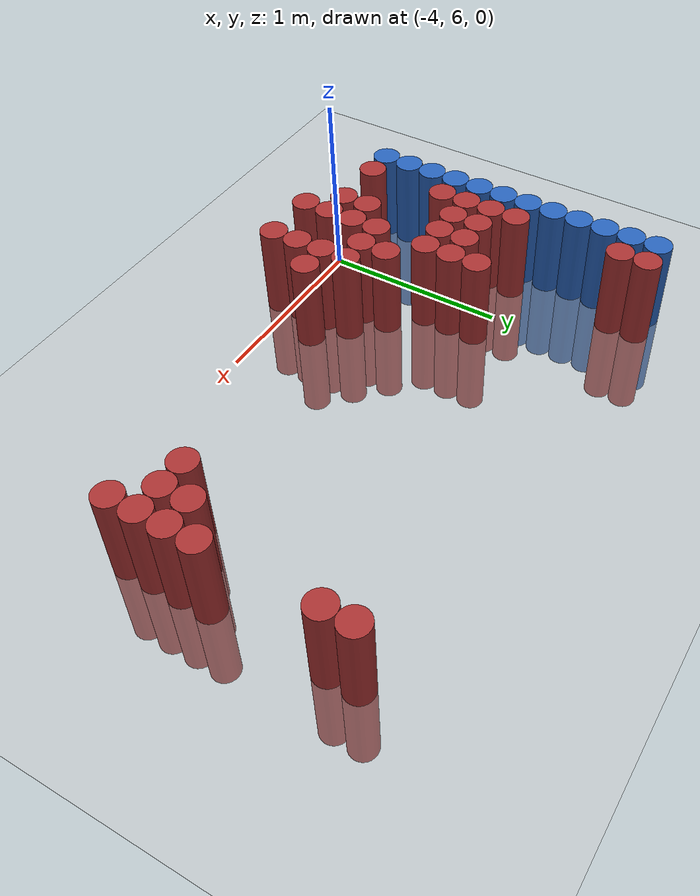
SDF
<sdf version="1.6">
 <world name="default">
  <model name="ground_plane">
   <static>1</static>
   <link name="link">
    <collision name="collision">
     <geometry><plane><normal>0 0 1</normal><size>100 100</size></plane></geometry>
     <surface><friction><ode><mu>100</mu><mu2>50</mu2></ode></friction></surface>
    </collision>
    <visual name="visual">
     <cast_shadows>0</cast_shadows>
     <geometry><plane><normal>0 0 1</normal><size>100 100</size></plane></geometry>
     <material>
      <script><uri>file://media/materials/scripts/gazebo.material</uri><name>Gazebo/Grey</name></script>
     </material>
    </visual>
   </link>
  </model>
  <model name="unit_cylinder_102">
   <static>1</static>
   <pose>-4.425000 6.075000 0.000000 0.000000 0.000000 0.000000</pose>
   <link name="link">
    <inertial>
     <mass>1</mass>
     <inertia><ixx>0.145833</ixx><ixy>0</ixy><ixz>0</ixz><iyy>0.145833</iyy><iyz>0</iyz><izz>0.125</izz></inertia>
    </inertial>
    <collision name="collision">
     <geometry><cylinder><radius>0.075000</radius><length>1</length></cylinder></geometry>
    </collision>
    <visual name="visual">
     <geometry><cylinder><radius>0.075000</radius><length>1</length></cylinder></geometry>
     <material>
      <ambient>0.152000 0.379000 0.720000 1</ambient>
      <diffuse>0.152000 0.379000 0.720000 1</diffuse>
     </material>
     <material>
      <script><name>Gazebo/Grey</name><uri>file://media/materials/scripts/gazebo.material</uri></script>
     </material>
    </visual>
   </link>
  </model>
  <model name="unit_cylinder_103">
   <static>1</static>
   <pose>-4.425000 6.225000 0.000000 0.000000 0.000000 0.000000</pose>
   <link name="link">
    <inertial>
     <mass>1</mass>
     <inertia><ixx>0.145833</ixx><ixy>0</ixy><ixz>0</ixz><iyy>0.145833</iyy><iyz>0</iyz><izz>0.125</izz></inertia>
    </inertial>
    <collision name="collision">
     <geometry><cylinder><radius>0.075000</radius><length>1</length></cylinder></geometry>
    </collision>
    <visual name="visual">
     <geometry><cylinder><radius>0.075000</radius><length>1</length></cylinder></geometry>
     <material>
      <ambient>0.152000 0.379000 0.720000 1</ambient>
      <diffuse>0.152000 0.379000 0.720000 1</diffuse>
     </material>
     <material>
      <script><name>Gazebo/Grey</name><uri>file://media/materials/scripts/gazebo.material</uri></script>
     </material>
    </visual>
   </link>
  </model>
  <model name="unit_cylinder_104">
   <static>1</static>
   <pose>-4.425000 6.375000 0.000000 0.000000 0.000000 0.000000</pose>
   <link name="link">
    <inertial>
     <mass>1</mass>
     <inertia><ixx>0.145833</ixx><ixy>0</ixy><ixz>0</ixz><iyy>0.145833</iyy><iyz>0</iyz><izz>0.125</izz></inertia>
    </inertial>
    <collision name="collision">
     <geometry><cylinder><radius>0.075000</radius><length>1</length></cylinder></geometry>
    </collision>
    <visual name="visual">
     <geometry><cylinder><radius>0.075000</radius><length>1</length></cylinder></geometry>
     <material>
      <ambient>0.152000 0.379000 0.720000 1</ambient>
      <diffuse>0.152000 0.379000 0.720000 1</diffuse>
     </material>
     <material>
      <script><name>Gazebo/Grey</name><uri>file://media/materials/scripts/gazebo.material</uri></script>
     </material>
    </visual>
   </link>
  </model>
  <model name="unit_cylinder_105">
   <static>1</static>
   <pose>-4.425000 6.525000 0.000000 0.000000 0.000000 0.000000</pose>
   <link name="link">
    <inertial>
     <mass>1</mass>
     <inertia><ixx>0.145833</ixx><ixy>0</ixy><ixz>0</ixz><iyy>0.145833</iyy><iyz>0</iyz><izz>0.125</izz></inertia>
    </inertial>
    <collision name="collision">
     <geometry><cylinder><radius>0.075000</radius><length>1</length></cylinder></geometry>
    </collision>
    <visual name="visual">
     <geometry><cylinder><radius>0.075000</radius><length>1</length></cylinder></geometry>
     <material>
      <ambient>0.152000 0.379000 0.720000 1</ambient>
      <diffuse>0.152000 0.379000 0.720000 1</diffuse>
     </material>
     <material>
      <script><name>Gazebo/Grey</name><uri>file://media/materials/scripts/gazebo.material</uri></script>
     </material>
    </visual>
   </link>
  </model>
  <model name="unit_cylinder_106">
   <static>1</static>
   <pose>-4.425000 6.675000 0.000000 0.000000 0.000000 0.000000</pose>
   <link name="link">
    <inertial>
     <mass>1</mass>
     <inertia><ixx>0.145833</ixx><ixy>0</ixy><ixz>0</ixz><iyy>0.145833</iyy><iyz>0</iyz><izz>0.125</izz></inertia>
    </inertial>
    <collision name="collision">
     <geometry><cylinder><radius>0.075000</radius><length>1</length></cylinder></geometry>
    </collision>
    <visual name="visual">
     <geometry><cylinder><radius>0.075000</radius><length>1</length></cylinder></geometry>
     <material>
      <ambient>0.152000 0.379000 0.720000 1</ambient>
      <diffuse>0.152000 0.379000 0.720000 1</diffuse>
     </material>
     <material>
      <script><name>Gazebo/Grey</name><uri>file://media/materials/scripts/gazebo.material</uri></script>
     </material>
    </visual>
   </link>
  </model>
  <model name="unit_cylinder_107">
   <static>1</static>
   <pose>-4.425000 6.825000 0.000000 0.000000 0.000000 0.000000</pose>
   <link name="link">
    <inertial>
     <mass>1</mass>
     <inertia><ixx>0.145833</ixx><ixy>0</ixy><ixz>0</ixz><iyy>0.145833</iyy><iyz>0</iyz><izz>0.125</izz></inertia>
    </inertial>
    <collision name="collision">
     <geometry><cylinder><radius>0.075000</radius><length>1</length></cylinder></geometry>
    </collision>
    <visual name="visual">
     <geometry><cylinder><radius>0.075000</radius><length>1</length></cylinder></geometry>
     <material>
      <ambient>0.152000 0.379000 0.720000 1</ambient>
      <diffuse>0.152000 0.379000 0.720000 1</diffuse>
     </material>
     <material>
      <script><name>Gazebo/Grey</name><uri>file://media/materials/scripts/gazebo.material</uri></script>
     </material>
    </visual>
   </link>
  </model>
  <model name="unit_cylinder_108">
   <static>1</static>
   <pose>-4.425000 6.975000 0.000000 0.000000 0.000000 0.000000</pose>
   <link name="link">
    <inertial>
     <mass>1</mass>
     <inertia><ixx>0.145833</ixx><ixy>0</ixy><ixz>0</ixz><iyy>0.145833</iyy><iyz>0</iyz><izz>0.125</izz></inertia>
    </inertial>
    <collision name="collision">
     <geometry><cylinder><radius>0.075000</radius><length>1</length></cylinder></geometry>
    </collision>
    <visual name="visual">
     <geometry><cylinder><radius>0.075000</radius><length>1</length></cylinder></geometry>
     <material>
      <ambient>0.152000 0.379000 0.720000 1</ambient>
      <diffuse>0.152000 0.379000 0.720000 1</diffuse>
     </material>
     <material>
      <script><name>Gazebo/Grey</name><uri>file://media/materials/scripts/gazebo.material</uri></script>
     </material>
    </visual>
   </link>
  </model>
  <model name="unit_cylinder_109">
   <static>1</static>
   <pose>-4.425000 7.125000 0.000000 0.000000 0.000000 0.000000</pose>
   <link name="link">
    <inertial>
     <mass>1</mass>
     <inertia><ixx>0.145833</ixx><ixy>0</ixy><ixz>0</ixz><iyy>0.145833</iyy><iyz>0</iyz><izz>0.125</izz></inertia>
    </inertial>
    <collision name="collision">
     <geometry><cylinder><radius>0.075000</radius><length>1</length></cylinder></geometry>
    </collision>
    <visual name="visual">
     <geometry><cylinder><radius>0.075000</radius><length>1</length></cylinder></geometry>
     <material>
      <ambient>0.152000 0.379000 0.720000 1</ambient>
      <diffuse>0.152000 0.379000 0.720000 1</diffuse>
     </material>
     <material>
      <script><name>Gazebo/Grey</name><uri>file://media/materials/scripts/gazebo.material</uri></script>
     </material>
    </visual>
   </link>
  </model>
  <model name="unit_cylinder_110">
   <static>1</static>
   <pose>-4.425000 7.275000 0.000000 0.000000 0.000000 0.000000</pose>
   <link name="link">
    <inertial>
     <mass>1</mass>
     <inertia><ixx>0.145833</ixx><ixy>0</ixy><ixz>0</ixz><iyy>0.145833</iyy><iyz>0</iyz><izz>0.125</izz></inertia>
    </inertial>
    <collision name="collision">
     <geometry><cylinder><radius>0.075000</radius><length>1</length></cylinder></geometry>
    </collision>
    <visual name="visual">
     <geometry><cylinder><radius>0.075000</radius><length>1</length></cylinder></geometry>
     <material>
      <ambient>0.152000 0.379000 0.720000 1</ambient>
      <diffuse>0.152000 0.379000 0.720000 1</diffuse>
     </material>
     <material>
      <script><name>Gazebo/Grey</name><uri>file://media/materials/scripts/gazebo.material</uri></script>
     </material>
    </visual>
   </link>
  </model>
  <model name="unit_cylinder_111">
   <static>1</static>
   <pose>-4.425000 7.425000 0.000000 0.000000 0.000000 0.000000</pose>
   <link name="link">
    <inertial>
     <mass>1</mass>
     <inertia><ixx>0.145833</ixx><ixy>0</ixy><ixz>0</ixz><iyy>0.145833</iyy><iyz>0</iyz><izz>0.125</izz></inertia>
    </inertial>
    <collision name="collision">
     <geometry><cylinder><radius>0.075000</radius><length>1</length></cylinder></geometry>
    </collision>
    <visual name="visual">
     <geometry><cylinder><radius>0.075000</radius><length>1</length></cylinder></geometry>
     <material>
      <ambient>0.152000 0.379000 0.720000 1</ambient>
      <diffuse>0.152000 0.379000 0.720000 1</diffuse>
     </material>
     <material>
      <script><name>Gazebo/Grey</name><uri>file://media/materials/scripts/gazebo.material</uri></script>
     </material>
    </visual>
   </link>
  </model>
  <model name="unit_cylinder_112">
   <static>1</static>
   <pose>-4.425000 7.575000 0.000000 0.000000 0.000000 0.000000</pose>
   <link name="link">
    <inertial>
     <mass>1</mass>
     <inertia><ixx>0.145833</ixx><ixy>0</ixy><ixz>0</ixz><iyy>0.145833</iyy><iyz>0</iyz><izz>0.125</izz></inertia>
    </inertial>
    <collision name="collision">
     <geometry><cylinder><radius>0.075000</radius><length>1</length></cylinder></geometry>
    </collision>
    <visual name="visual">
     <geometry><cylinder><radius>0.075000</radius><length>1</length></cylinder></geometry>
     <material>
      <ambient>0.152000 0.379000 0.720000 1</ambient>
      <diffuse>0.152000 0.379000 0.720000 1</diffuse>
     </material>
     <material>
      <script><name>Gazebo/Grey</name><uri>file://media/materials/scripts/gazebo.material</uri></script>
     </material>
    </visual>
   </link>
  </model>
  <model name="unit_cylinder_113">
   <static>1</static>
   <pose>-4.425000 7.725000 0.000000 0.000000 0.000000 0.000000</pose>
   <link name="link">
    <inertial>
     <mass>1</mass>
     <inertia><ixx>0.145833</ixx><ixy>0</ixy><ixz>0</ixz><iyy>0.145833</iyy><iyz>0</iyz><izz>0.125</izz></inertia>
    </inertial>
    <collision name="collision">
     <geometry><cylinder><radius>0.075000</radius><length>1</length></cylinder></geometry>
    </collision>
    <visual name="visual">
     <geometry><cylinder><radius>0.075000</radius><length>1</length></cylinder></geometry>
     <material>
      <ambient>0.152000 0.379000 0.720000 1</ambient>
      <diffuse>0.152000 0.379000 0.720000 1</diffuse>
     </material>
     <material>
      <script><name>Gazebo/Grey</name><uri>file://media/materials/scripts/gazebo.material</uri></script>
     </material>
    </visual>
   </link>
  </model>
  <model name="unit_cylinder_128">
   <static>1</static>
   <pose>-4.275000 6.075000 0.000000 0.000000 0.000000 0.000000</pose>
   <link name="link">
    <inertial>
     <mass>1</mass>
     <inertia><ixx>0.145833</ixx><ixy>0</ixy><ixz>0</ixz><iyy>0.145833</iyy><iyz>0</iyz><izz>0.125</izz></inertia>
    </inertial>
    <collision name="collision">
     <geometry><cylinder><radius>0.075000</radius><length>1</length></cylinder></geometry>
    </collision>
    <visual name="visual">
     <geometry><cylinder><radius>0.075000</radius><length>1</length></cylinder></geometry>
     <material>
      <ambient>0.648000 0.192000 0.192000 1</ambient>
      <diffuse>0.648000 0.192000 0.192000 1</diffuse>
     </material>
     <material>
      <script><name>Gazebo/Grey</name><uri>file://media/materials/scripts/gazebo.material</uri></script>
     </material>
    </visual>
   </link>
  </model>
  <model name="unit_cylinder_129">
   <static>1</static>
   <pose>-4.275000 6.525000 0.000000 0.000000 0.000000 0.000000</pose>
   <link name="link">
    <inertial>
     <mass>1</mass>
     <inertia><ixx>0.145833</ixx><ixy>0</ixy><ixz>0</ixz><iyy>0.145833</iyy><iyz>0</iyz><izz>0.125</izz></inertia>
    </inertial>
    <collision name="collision">
     <geometry><cylinder><radius>0.075000</radius><length>1</length></cylinder></geometry>
    </collision>
    <visual name="visual">
     <geometry><cylinder><radius>0.075000</radius><length>1</length></cylinder></geometry>
     <material>
      <ambient>0.648000 0.192000 0.192000 1</ambient>
      <diffuse>0.648000 0.192000 0.192000 1</diffuse>
     </material>
     <material>
      <script><name>Gazebo/Grey</name><uri>file://media/materials/scripts/gazebo.material</uri></script>
     </material>
    </visual>
   </link>
  </model>
  <model name="unit_cylinder_130">
   <static>1</static>
   <pose>-4.275000 6.675000 0.000000 0.000000 0.000000 0.000000</pose>
   <link name="link">
    <inertial>
     <mass>1</mass>
     <inertia><ixx>0.145833</ixx><ixy>0</ixy><ixz>0</ixz><iyy>0.145833</iyy><iyz>0</iyz><izz>0.125</izz></inertia>
    </inertial>
    <collision name="collision">
     <geometry><cylinder><radius>0.075000</radius><length>1</length></cylinder></geometry>
    </collision>
    <visual name="visual">
     <geometry><cylinder><radius>0.075000</radius><length>1</length></cylinder></geometry>
     <material>
      <ambient>0.648000 0.192000 0.192000 1</ambient>
      <diffuse>0.648000 0.192000 0.192000 1</diffuse>
     </material>
     <material>
      <script><name>Gazebo/Grey</name><uri>file://media/materials/scripts/gazebo.material</uri></script>
     </material>
    </visual>
   </link>
  </model>
  <model name="unit_cylinder_131">
   <static>1</static>
   <pose>-4.275000 6.825000 0.000000 0.000000 0.000000 0.000000</pose>
   <link name="link">
    <inertial>
     <mass>1</mass>
     <inertia><ixx>0.145833</ixx><ixy>0</ixy><ixz>0</ixz><iyy>0.145833</iyy><iyz>0</iyz><izz>0.125</izz></inertia>
    </inertial>
    <collision name="collision">
     <geometry><cylinder><radius>0.075000</radius><length>1</length></cylinder></geometry>
    </collision>
    <visual name="visual">
     <geometry><cylinder><radius>0.075000</radius><length>1</length></cylinder></geometry>
     <material>
      <ambient>0.648000 0.192000 0.192000 1</ambient>
      <diffuse>0.648000 0.192000 0.192000 1</diffuse>
     </material>
     <material>
      <script><name>Gazebo/Grey</name><uri>file://media/materials/scripts/gazebo.material</uri></script>
     </material>
    </visual>
   </link>
  </model>
  <model name="unit_cylinder_132">
   <static>1</static>
   <pose>-4.275000 6.975000 0.000000 0.000000 0.000000 0.000000</pose>
   <link name="link">
    <inertial>
     <mass>1</mass>
     <inertia><ixx>0.145833</ixx><ixy>0</ixy><ixz>0</ixz><iyy>0.145833</iyy><iyz>0</iyz><izz>0.125</izz></inertia>
    </inertial>
    <collision name="collision">
     <geometry><cylinder><radius>0.075000</radius><length>1</length></cylinder></geometry>
    </collision>
    <visual name="visual">
     <geometry><cylinder><radius>0.075000</radius><length>1</length></cylinder></geometry>
     <material>
      <ambient>0.648000 0.192000 0.192000 1</ambient>
      <diffuse>0.648000 0.192000 0.192000 1</diffuse>
     </material>
     <material>
      <script><name>Gazebo/Grey</name><uri>file://media/materials/scripts/gazebo.material</uri></script>
     </material>
    </visual>
   </link>
  </model>
  <model name="unit_cylinder_133">
   <static>1</static>
   <pose>-4.275000 7.575000 0.000000 0.000000 0.000000 0.000000</pose>
   <link name="link">
    <inertial>
     <mass>1</mass>
     <inertia><ixx>0.145833</ixx><ixy>0</ixy><ixz>0</ixz><iyy>0.145833</iyy><iyz>0</iyz><izz>0.125</izz></inertia>
    </inertial>
    <collision name="collision">
     <geometry><cylinder><radius>0.075000</radius><length>1</length></cylinder></geometry>
    </collision>
    <visual name="visual">
     <geometry><cylinder><radius>0.075000</radius><length>1</length></cylinder></geometry>
     <material>
      <ambient>0.648000 0.192000 0.192000 1</ambient>
      <diffuse>0.648000 0.192000 0.192000 1</diffuse>
     </material>
     <material>
      <script><name>Gazebo/Grey</name><uri>file://media/materials/scripts/gazebo.material</uri></script>
     </material>
    </visual>
   </link>
  </model>
  <model name="unit_cylinder_134">
   <static>1</static>
   <pose>-4.275000 7.725000 0.000000 0.000000 0.000000 0.000000</pose>
   <link name="link">
    <inertial>
     <mass>1</mass>
     <inertia><ixx>0.145833</ixx><ixy>0</ixy><ixz>0</ixz><iyy>0.145833</iyy><iyz>0</iyz><izz>0.125</izz></inertia>
    </inertial>
    <collision name="collision">
     <geometry><cylinder><radius>0.075000</radius><length>1</length></cylinder></geometry>
    </collision>
    <visual name="visual">
     <geometry><cylinder><radius>0.075000</radius><length>1</length></cylinder></geometry>
     <material>
      <ambient>0.648000 0.192000 0.192000 1</ambient>
      <diffuse>0.648000 0.192000 0.192000 1</diffuse>
     </material>
     <material>
      <script><name>Gazebo/Grey</name><uri>file://media/materials/scripts/gazebo.material</uri></script>
     </material>
    </visual>
   </link>
  </model>
  <model name="unit_cylinder_143">
   <static>1</static>
   <pose>-4.125000 6.675000 0.000000 0.000000 0.000000 0.000000</pose>
   <link name="link">
    <inertial>
     <mass>1</mass>
     <inertia><ixx>0.145833</ixx><ixy>0</ixy><ixz>0</ixz><iyy>0.145833</iyy><iyz>0</iyz><izz>0.125</izz></inertia>
    </inertial>
    <collision name="collision">
     <geometry><cylinder><radius>0.075000</radius><length>1</length></cylinder></geometry>
    </collision>
    <visual name="visual">
     <geometry><cylinder><radius>0.075000</radius><length>1</length></cylinder></geometry>
     <material>
      <ambient>0.648000 0.192000 0.192000 1</ambient>
      <diffuse>0.648000 0.192000 0.192000 1</diffuse>
     </material>
     <material>
      <script><name>Gazebo/Grey</name><uri>file://media/materials/scripts/gazebo.material</uri></script>
     </material>
    </visual>
   </link>
  </model>
  <model name="unit_cylinder_144">
   <static>1</static>
   <pose>-4.125000 6.825000 0.000000 0.000000 0.000000 0.000000</pose>
   <link name="link">
    <inertial>
     <mass>1</mass>
     <inertia><ixx>0.145833</ixx><ixy>0</ixy><ixz>0</ixz><iyy>0.145833</iyy><iyz>0</iyz><izz>0.125</izz></inertia>
    </inertial>
    <collision name="collision">
     <geometry><cylinder><radius>0.075000</radius><length>1</length></cylinder></geometry>
    </collision>
    <visual name="visual">
     <geometry><cylinder><radius>0.075000</radius><length>1</length></cylinder></geometry>
     <material>
      <ambient>0.648000 0.192000 0.192000 1</ambient>
      <diffuse>0.648000 0.192000 0.192000 1</diffuse>
     </material>
     <material>
      <script><name>Gazebo/Grey</name><uri>file://media/materials/scripts/gazebo.material</uri></script>
     </material>
    </visual>
   </link>
  </model>
  <model name="unit_cylinder_154">
   <static>1</static>
   <pose>-3.975000 6.075000 0.000000 0.000000 0.000000 0.000000</pose>
   <link name="link">
    <inertial>
     <mass>1</mass>
     <inertia><ixx>0.145833</ixx><ixy>0</ixy><ixz>0</ixz><iyy>0.145833</iyy><iyz>0</iyz><izz>0.125</izz></inertia>
    </inertial>
    <collision name="collision">
     <geometry><cylinder><radius>0.075000</radius><length>1</length></cylinder></geometry>
    </collision>
    <visual name="visual">
     <geometry><cylinder><radius>0.075000</radius><length>1</length></cylinder></geometry>
     <material>
      <ambient>0.648000 0.192000 0.192000 1</ambient>
      <diffuse>0.648000 0.192000 0.192000 1</diffuse>
     </material>
     <material>
      <script><name>Gazebo/Grey</name><uri>file://media/materials/scripts/gazebo.material</uri></script>
     </material>
    </visual>
   </link>
  </model>
  <model name="unit_cylinder_155">
   <static>1</static>
   <pose>-3.975000 6.225000 0.000000 0.000000 0.000000 0.000000</pose>
   <link name="link">
    <inertial>
     <mass>1</mass>
     <inertia><ixx>0.145833</ixx><ixy>0</ixy><ixz>0</ixz><iyy>0.145833</iyy><iyz>0</iyz><izz>0.125</izz></inertia>
    </inertial>
    <collision name="collision">
     <geometry><cylinder><radius>0.075000</radius><length>1</length></cylinder></geometry>
    </collision>
    <visual name="visual">
     <geometry><cylinder><radius>0.075000</radius><length>1</length></cylinder></geometry>
     <material>
      <ambient>0.648000 0.192000 0.192000 1</ambient>
      <diffuse>0.648000 0.192000 0.192000 1</diffuse>
     </material>
     <material>
      <script><name>Gazebo/Grey</name><uri>file://media/materials/scripts/gazebo.material</uri></script>
     </material>
    </visual>
   </link>
  </model>
  <model name="unit_cylinder_156">
   <static>1</static>
   <pose>-3.975000 6.675000 0.000000 0.000000 0.000000 0.000000</pose>
   <link name="link">
    <inertial>
     <mass>1</mass>
     <inertia><ixx>0.145833</ixx><ixy>0</ixy><ixz>0</ixz><iyy>0.145833</iyy><iyz>0</iyz><izz>0.125</izz></inertia>
    </inertial>
    <collision name="collision">
     <geometry><cylinder><radius>0.075000</radius><length>1</length></cylinder></geometry>
    </collision>
    <visual name="visual">
     <geometry><cylinder><radius>0.075000</radius><length>1</length></cylinder></geometry>
     <material>
      <ambient>0.648000 0.192000 0.192000 1</ambient>
      <diffuse>0.648000 0.192000 0.192000 1</diffuse>
     </material>
     <material>
      <script><name>Gazebo/Grey</name><uri>file://media/materials/scripts/gazebo.material</uri></script>
     </material>
    </visual>
   </link>
  </model>
  <model name="unit_cylinder_157">
   <static>1</static>
   <pose>-3.975000 6.825000 0.000000 0.000000 0.000000 0.000000</pose>
   <link name="link">
    <inertial>
     <mass>1</mass>
     <inertia><ixx>0.145833</ixx><ixy>0</ixy><ixz>0</ixz><iyy>0.145833</iyy><iyz>0</iyz><izz>0.125</izz></inertia>
    </inertial>
    <collision name="collision">
     <geometry><cylinder><radius>0.075000</radius><length>1</length></cylinder></geometry>
    </collision>
    <visual name="visual">
     <geometry><cylinder><radius>0.075000</radius><length>1</length></cylinder></geometry>
     <material>
      <ambient>0.648000 0.192000 0.192000 1</ambient>
      <diffuse>0.648000 0.192000 0.192000 1</diffuse>
     </material>
     <material>
      <script><name>Gazebo/Grey</name><uri>file://media/materials/scripts/gazebo.material</uri></script>
     </material>
    </visual>
   </link>
  </model>
  <model name="unit_cylinder_165">
   <static>1</static>
   <pose>-3.825000 5.925000 0.000000 0.000000 0.000000 0.000000</pose>
   <link name="link">
    <inertial>
     <mass>1</mass>
     <inertia><ixx>0.145833</ixx><ixy>0</ixy><ixz>0</ixz><iyy>0.145833</iyy><iyz>0</iyz><izz>0.125</izz></inertia>
    </inertial>
    <collision name="collision">
     <geometry><cylinder><radius>0.075000</radius><length>1</length></cylinder></geometry>
    </collision>
    <visual name="visual">
     <geometry><cylinder><radius>0.075000</radius><length>1</length></cylinder></geometry>
     <material>
      <ambient>0.648000 0.192000 0.192000 1</ambient>
      <diffuse>0.648000 0.192000 0.192000 1</diffuse>
     </material>
     <material>
      <script><name>Gazebo/Grey</name><uri>file://media/materials/scripts/gazebo.material</uri></script>
     </material>
    </visual>
   </link>
  </model>
  <model name="unit_cylinder_166">
   <static>1</static>
   <pose>-3.825000 6.075000 0.000000 0.000000 0.000000 0.000000</pose>
   <link name="link">
    <inertial>
     <mass>1</mass>
     <inertia><ixx>0.145833</ixx><ixy>0</ixy><ixz>0</ixz><iyy>0.145833</iyy><iyz>0</iyz><izz>0.125</izz></inertia>
    </inertial>
    <collision name="collision">
     <geometry><cylinder><radius>0.075000</radius><length>1</length></cylinder></geometry>
    </collision>
    <visual name="visual">
     <geometry><cylinder><radius>0.075000</radius><length>1</length></cylinder></geometry>
     <material>
      <ambient>0.648000 0.192000 0.192000 1</ambient>
      <diffuse>0.648000 0.192000 0.192000 1</diffuse>
     </material>
     <material>
      <script><name>Gazebo/Grey</name><uri>file://media/materials/scripts/gazebo.material</uri></script>
     </material>
    </visual>
   </link>
  </model>
  <model name="unit_cylinder_167">
   <static>1</static>
   <pose>-3.825000 6.225000 0.000000 0.000000 0.000000 0.000000</pose>
   <link name="link">
    <inertial>
     <mass>1</mass>
     <inertia><ixx>0.145833</ixx><ixy>0</ixy><ixz>0</ixz><iyy>0.145833</iyy><iyz>0</iyz><izz>0.125</izz></inertia>
    </inertial>
    <collision name="collision">
     <geometry><cylinder><radius>0.075000</radius><length>1</length></cylinder></geometry>
    </collision>
    <visual name="visual">
     <geometry><cylinder><radius>0.075000</radius><length>1</length></cylinder></geometry>
     <material>
      <ambient>0.648000 0.192000 0.192000 1</ambient>
      <diffuse>0.648000 0.192000 0.192000 1</diffuse>
     </material>
     <material>
      <script><name>Gazebo/Grey</name><uri>file://media/materials/scripts/gazebo.material</uri></script>
     </material>
    </visual>
   </link>
  </model>
  <model name="unit_cylinder_168">
   <static>1</static>
   <pose>-3.825000 6.375000 0.000000 0.000000 0.000000 0.000000</pose>
   <link name="link">
    <inertial>
     <mass>1</mass>
     <inertia><ixx>0.145833</ixx><ixy>0</ixy><ixz>0</ixz><iyy>0.145833</iyy><iyz>0</iyz><izz>0.125</izz></inertia>
    </inertial>
    <collision name="collision">
     <geometry><cylinder><radius>0.075000</radius><length>1</length></cylinder></geometry>
    </collision>
    <visual name="visual">
     <geometry><cylinder><radius>0.075000</radius><length>1</length></cylinder></geometry>
     <material>
      <ambient>0.648000 0.192000 0.192000 1</ambient>
      <diffuse>0.648000 0.192000 0.192000 1</diffuse>
     </material>
     <material>
      <script><name>Gazebo/Grey</name><uri>file://media/materials/scripts/gazebo.material</uri></script>
     </material>
    </visual>
   </link>
  </model>
  <model name="unit_cylinder_169">
   <static>1</static>
   <pose>-3.825000 6.675000 0.000000 0.000000 0.000000 0.000000</pose>
   <link name="link">
    <inertial>
     <mass>1</mass>
     <inertia><ixx>0.145833</ixx><ixy>0</ixy><ixz>0</ixz><iyy>0.145833</iyy><iyz>0</iyz><izz>0.125</izz></inertia>
    </inertial>
    <collision name="collision">
     <geometry><cylinder><radius>0.075000</radius><length>1</length></cylinder></geometry>
    </collision>
    <visual name="visual">
     <geometry><cylinder><radius>0.075000</radius><length>1</length></cylinder></geometry>
     <material>
      <ambient>0.648000 0.192000 0.192000 1</ambient>
      <diffuse>0.648000 0.192000 0.192000 1</diffuse>
     </material>
     <material>
      <script><name>Gazebo/Grey</name><uri>file://media/materials/scripts/gazebo.material</uri></script>
     </material>
    </visual>
   </link>
  </model>
  <model name="unit_cylinder_170">
   <static>1</static>
   <pose>-3.825000 6.825000 0.000000 0.000000 0.000000 0.000000</pose>
   <link name="link">
    <inertial>
     <mass>1</mass>
     <inertia><ixx>0.145833</ixx><ixy>0</ixy><ixz>0</ixz><iyy>0.145833</iyy><iyz>0</iyz><izz>0.125</izz></inertia>
    </inertial>
    <collision name="collision">
     <geometry><cylinder><radius>0.075000</radius><length>1</length></cylinder></geometry>
    </collision>
    <visual name="visual">
     <geometry><cylinder><radius>0.075000</radius><length>1</length></cylinder></geometry>
     <material>
      <ambient>0.648000 0.192000 0.192000 1</ambient>
      <diffuse>0.648000 0.192000 0.192000 1</diffuse>
     </material>
     <material>
      <script><name>Gazebo/Grey</name><uri>file://media/materials/scripts/gazebo.material</uri></script>
     </material>
    </visual>
   </link>
  </model>
  <model name="unit_cylinder_171">
   <static>1</static>
   <pose>-3.825000 6.975000 0.000000 0.000000 0.000000 0.000000</pose>
   <link name="link">
    <inertial>
     <mass>1</mass>
     <inertia><ixx>0.145833</ixx><ixy>0</ixy><ixz>0</ixz><iyy>0.145833</iyy><iyz>0</iyz><izz>0.125</izz></inertia>
    </inertial>
    <collision name="collision">
     <geometry><cylinder><radius>0.075000</radius><length>1</length></cylinder></geometry>
    </collision>
    <visual name="visual">
     <geometry><cylinder><radius>0.075000</radius><length>1</length></cylinder></geometry>
     <material>
      <ambient>0.648000 0.192000 0.192000 1</ambient>
      <diffuse>0.648000 0.192000 0.192000 1</diffuse>
     </material>
     <material>
      <script><name>Gazebo/Grey</name><uri>file://media/materials/scripts/gazebo.material</uri></script>
     </material>
    </visual>
   </link>
  </model>
  <model name="unit_cylinder_173">
   <static>1</static>
   <pose>-3.675000 6.375000 0.000000 0.000000 0.000000 0.000000</pose>
   <link name="link">
    <inertial>
     <mass>1</mass>
     <inertia><ixx>0.145833</ixx><ixy>0</ixy><ixz>0</ixz><iyy>0.145833</iyy><iyz>0</iyz><izz>0.125</izz></inertia>
    </inertial>
    <collision name="collision">
     <geometry><cylinder><radius>0.075000</radius><length>1</length></cylinder></geometry>
    </collision>
    <visual name="visual">
     <geometry><cylinder><radius>0.075000</radius><length>1</length></cylinder></geometry>
     <material>
      <ambient>0.648000 0.192000 0.192000 1</ambient>
      <diffuse>0.648000 0.192000 0.192000 1</diffuse>
     </material>
     <material>
      <script><name>Gazebo/Grey</name><uri>file://media/materials/scripts/gazebo.material</uri></script>
     </material>
    </visual>
   </link>
  </model>
  <model name="unit_cylinder_174">
   <static>1</static>
   <pose>-3.675000 6.525000 0.000000 0.000000 0.000000 0.000000</pose>
   <link name="link">
    <inertial>
     <mass>1</mass>
     <inertia><ixx>0.145833</ixx><ixy>0</ixy><ixz>0</ixz><iyy>0.145833</iyy><iyz>0</iyz><izz>0.125</izz></inertia>
    </inertial>
    <collision name="collision">
     <geometry><cylinder><radius>0.075000</radius><length>1</length></cylinder></geometry>
    </collision>
    <visual name="visual">
     <geometry><cylinder><radius>0.075000</radius><length>1</length></cylinder></geometry>
     <material>
      <ambient>0.648000 0.192000 0.192000 1</ambient>
      <diffuse>0.648000 0.192000 0.192000 1</diffuse>
     </material>
     <material>
      <script><name>Gazebo/Grey</name><uri>file://media/materials/scripts/gazebo.material</uri></script>
     </material>
    </visual>
   </link>
  </model>
  <model name="unit_cylinder_179">
   <static>1</static>
   <pose>-3.525000 5.925000 0.000000 0.000000 0.000000 0.000000</pose>
   <link name="link">
    <inertial>
     <mass>1</mass>
     <inertia><ixx>0.145833</ixx><ixy>0</ixy><ixz>0</ixz><iyy>0.145833</iyy><iyz>0</iyz><izz>0.125</izz></inertia>
    </inertial>
    <collision name="collision">
     <geometry><cylinder><radius>0.075000</radius><length>1</length></cylinder></geometry>
    </collision>
    <visual name="visual">
     <geometry><cylinder><radius>0.075000</radius><length>1</length></cylinder></geometry>
     <material>
      <ambient>0.648000 0.192000 0.192000 1</ambient>
      <diffuse>0.648000 0.192000 0.192000 1</diffuse>
     </material>
     <material>
      <script><name>Gazebo/Grey</name><uri>file://media/materials/scripts/gazebo.material</uri></script>
     </material>
    </visual>
   </link>
  </model>
  <model name="unit_cylinder_180">
   <static>1</static>
   <pose>-3.525000 6.075000 0.000000 0.000000 0.000000 0.000000</pose>
   <link name="link">
    <inertial>
     <mass>1</mass>
     <inertia><ixx>0.145833</ixx><ixy>0</ixy><ixz>0</ixz><iyy>0.145833</iyy><iyz>0</iyz><izz>0.125</izz></inertia>
    </inertial>
    <collision name="collision">
     <geometry><cylinder><radius>0.075000</radius><length>1</length></cylinder></geometry>
    </collision>
    <visual name="visual">
     <geometry><cylinder><radius>0.075000</radius><length>1</length></cylinder></geometry>
     <material>
      <ambient>0.648000 0.192000 0.192000 1</ambient>
      <diffuse>0.648000 0.192000 0.192000 1</diffuse>
     </material>
     <material>
      <script><name>Gazebo/Grey</name><uri>file://media/materials/scripts/gazebo.material</uri></script>
     </material>
    </visual>
   </link>
  </model>
  <model name="unit_cylinder_181">
   <static>1</static>
   <pose>-3.525000 6.225000 0.000000 0.000000 0.000000 0.000000</pose>
   <link name="link">
    <inertial>
     <mass>1</mass>
     <inertia><ixx>0.145833</ixx><ixy>0</ixy><ixz>0</ixz><iyy>0.145833</iyy><iyz>0</iyz><izz>0.125</izz></inertia>
    </inertial>
    <collision name="collision">
     <geometry><cylinder><radius>0.075000</radius><length>1</length></cylinder></geometry>
    </collision>
    <visual name="visual">
     <geometry><cylinder><radius>0.075000</radius><length>1</length></cylinder></geometry>
     <material>
      <ambient>0.648000 0.192000 0.192000 1</ambient>
      <diffuse>0.648000 0.192000 0.192000 1</diffuse>
     </material>
     <material>
      <script><name>Gazebo/Grey</name><uri>file://media/materials/scripts/gazebo.material</uri></script>
     </material>
    </visual>
   </link>
  </model>
  <model name="unit_cylinder_182">
   <static>1</static>
   <pose>-3.525000 6.375000 0.000000 0.000000 0.000000 0.000000</pose>
   <link name="link">
    <inertial>
     <mass>1</mass>
     <inertia><ixx>0.145833</ixx><ixy>0</ixy><ixz>0</ixz><iyy>0.145833</iyy><iyz>0</iyz><izz>0.125</izz></inertia>
    </inertial>
    <collision name="collision">
     <geometry><cylinder><radius>0.075000</radius><length>1</length></cylinder></geometry>
    </collision>
    <visual name="visual">
     <geometry><cylinder><radius>0.075000</radius><length>1</length></cylinder></geometry>
     <material>
      <ambient>0.648000 0.192000 0.192000 1</ambient>
      <diffuse>0.648000 0.192000 0.192000 1</diffuse>
     </material>
     <material>
      <script><name>Gazebo/Grey</name><uri>file://media/materials/scripts/gazebo.material</uri></script>
     </material>
    </visual>
   </link>
  </model>
  <model name="unit_cylinder_184">
   <static>1</static>
   <pose>-3.375000 6.225000 0.000000 0.000000 0.000000 0.000000</pose>
   <link name="link">
    <inertial>
     <mass>1</mass>
     <inertia><ixx>0.145833</ixx><ixy>0</ixy><ixz>0</ixz><iyy>0.145833</iyy><iyz>0</iyz><izz>0.125</izz></inertia>
    </inertial>
    <collision name="collision">
     <geometry><cylinder><radius>0.075000</radius><length>1</length></cylinder></geometry>
    </collision>
    <visual name="visual">
     <geometry><cylinder><radius>0.075000</radius><length>1</length></cylinder></geometry>
     <material>
      <ambient>0.648000 0.192000 0.192000 1</ambient>
      <diffuse>0.648000 0.192000 0.192000 1</diffuse>
     </material>
     <material>
      <script><name>Gazebo/Grey</name><uri>file://media/materials/scripts/gazebo.material</uri></script>
     </material>
    </visual>
   </link>
  </model>
  <model name="unit_cylinder_205">
   <static>1</static>
   <pose>-2.025000 6.525000 0.000000 0.000000 0.000000 0.000000</pose>
   <link name="link">
    <inertial>
     <mass>1</mass>
     <inertia><ixx>0.145833</ixx><ixy>0</ixy><ixz>0</ixz><iyy>0.145833</iyy><iyz>0</iyz><izz>0.125</izz></inertia>
    </inertial>
    <collision name="collision">
     <geometry><cylinder><radius>0.075000</radius><length>1</length></cylinder></geometry>
    </collision>
    <visual name="visual">
     <geometry><cylinder><radius>0.075000</radius><length>1</length></cylinder></geometry>
     <material>
      <ambient>0.648000 0.192000 0.192000 1</ambient>
      <diffuse>0.648000 0.192000 0.192000 1</diffuse>
     </material>
     <material>
      <script><name>Gazebo/Grey</name><uri>file://media/materials/scripts/gazebo.material</uri></script>
     </material>
    </visual>
   </link>
  </model>
  <model name="unit_cylinder_208">
   <static>1</static>
   <pose>-1.875000 6.525000 0.000000 0.000000 0.000000 0.000000</pose>
   <link name="link">
    <inertial>
     <mass>1</mass>
     <inertia><ixx>0.145833</ixx><ixy>0</ixy><ixz>0</ixz><iyy>0.145833</iyy><iyz>0</iyz><izz>0.125</izz></inertia>
    </inertial>
    <collision name="collision">
     <geometry><cylinder><radius>0.075000</radius><length>1</length></cylinder></geometry>
    </collision>
    <visual name="visual">
     <geometry><cylinder><radius>0.075000</radius><length>1</length></cylinder></geometry>
     <material>
      <ambient>0.648000 0.192000 0.192000 1</ambient>
      <diffuse>0.648000 0.192000 0.192000 1</diffuse>
     </material>
     <material>
      <script><name>Gazebo/Grey</name><uri>file://media/materials/scripts/gazebo.material</uri></script>
     </material>
    </visual>
   </link>
  </model>
  <model name="unit_cylinder_209">
   <static>1</static>
   <pose>-1.875000 6.675000 0.000000 0.000000 0.000000 0.000000</pose>
   <link name="link">
    <inertial>
     <mass>1</mass>
     <inertia><ixx>0.145833</ixx><ixy>0</ixy><ixz>0</ixz><iyy>0.145833</iyy><iyz>0</iyz><izz>0.125</izz></inertia>
    </inertial>
    <collision name="collision">
     <geometry><cylinder><radius>0.075000</radius><length>1</length></cylinder></geometry>
    </collision>
    <visual name="visual">
     <geometry><cylinder><radius>0.075000</radius><length>1</length></cylinder></geometry>
     <material>
      <ambient>0.648000 0.192000 0.192000 1</ambient>
      <diffuse>0.648000 0.192000 0.192000 1</diffuse>
     </material>
     <material>
      <script><name>Gazebo/Grey</name><uri>file://media/materials/scripts/gazebo.material</uri></script>
     </material>
    </visual>
   </link>
  </model>
  <model name="unit_cylinder_211">
   <static>1</static>
   <pose>-1.725000 6.375000 0.000000 0.000000 0.000000 0.000000</pose>
   <link name="link">
    <inertial>
     <mass>1</mass>
     <inertia><ixx>0.145833</ixx><ixy>0</ixy><ixz>0</ixz><iyy>0.145833</iyy><iyz>0</iyz><izz>0.125</izz></inertia>
    </inertial>
    <collision name="collision">
     <geometry><cylinder><radius>0.075000</radius><length>1</length></cylinder></geometry>
    </collision>
    <visual name="visual">
     <geometry><cylinder><radius>0.075000</radius><length>1</length></cylinder></geometry>
     <material>
      <ambient>0.648000 0.192000 0.192000 1</ambient>
      <diffuse>0.648000 0.192000 0.192000 1</diffuse>
     </material>
     <material>
      <script><name>Gazebo/Grey</name><uri>file://media/materials/scripts/gazebo.material</uri></script>
     </material>
    </visual>
   </link>
  </model>
  <model name="unit_cylinder_212">
   <static>1</static>
   <pose>-1.725000 6.525000 0.000000 0.000000 0.000000 0.000000</pose>
   <link name="link">
    <inertial>
     <mass>1</mass>
     <inertia><ixx>0.145833</ixx><ixy>0</ixy><ixz>0</ixz><iyy>0.145833</iyy><iyz>0</iyz><izz>0.125</izz></inertia>
    </inertial>
    <collision name="collision">
     <geometry><cylinder><radius>0.075000</radius><length>1</length></cylinder></geometry>
    </collision>
    <visual name="visual">
     <geometry><cylinder><radius>0.075000</radius><length>1</length></cylinder></geometry>
     <material>
      <ambient>0.648000 0.192000 0.192000 1</ambient>
      <diffuse>0.648000 0.192000 0.192000 1</diffuse>
     </material>
     <material>
      <script><name>Gazebo/Grey</name><uri>file://media/materials/scripts/gazebo.material</uri></script>
     </material>
    </visual>
   </link>
  </model>
  <model name="unit_cylinder_213">
   <static>1</static>
   <pose>-1.725000 6.675000 0.000000 0.000000 0.000000 0.000000</pose>
   <link name="link">
    <inertial>
     <mass>1</mass>
     <inertia><ixx>0.145833</ixx><ixy>0</ixy><ixz>0</ixz><iyy>0.145833</iyy><iyz>0</iyz><izz>0.125</izz></inertia>
    </inertial>
    <collision name="collision">
     <geometry><cylinder><radius>0.075000</radius><length>1</length></cylinder></geometry>
    </collision>
    <visual name="visual">
     <geometry><cylinder><radius>0.075000</radius><length>1</length></cylinder></geometry>
     <material>
      <ambient>0.648000 0.192000 0.192000 1</ambient>
      <diffuse>0.648000 0.192000 0.192000 1</diffuse>
     </material>
     <material>
      <script><name>Gazebo/Grey</name><uri>file://media/materials/scripts/gazebo.material</uri></script>
     </material>
    </visual>
   </link>
  </model>
  <model name="unit_cylinder_214">
   <static>1</static>
   <pose>-1.725000 6.825000 0.000000 0.000000 0.000000 0.000000</pose>
   <link name="link">
    <inertial>
     <mass>1</mass>
     <inertia><ixx>0.145833</ixx><ixy>0</ixy><ixz>0</ixz><iyy>0.145833</iyy><iyz>0</iyz><izz>0.125</izz></inertia>
    </inertial>
    <collision name="collision">
     <geometry><cylinder><radius>0.075000</radius><length>1</length></cylinder></geometry>
    </collision>
    <visual name="visual">
     <geometry><cylinder><radius>0.075000</radius><length>1</length></cylinder></geometry>
     <material>
      <ambient>0.648000 0.192000 0.192000 1</ambient>
      <diffuse>0.648000 0.192000 0.192000 1</diffuse>
     </material>
     <material>
      <script><name>Gazebo/Grey</name><uri>file://media/materials/scripts/gazebo.material</uri></script>
     </material>
    </visual>
   </link>
  </model>
  <model name="unit_cylinder_215">
   <static>1</static>
   <pose>-1.725000 7.425000 0.000000 0.000000 0.000000 0.000000</pose>
   <link name="link">
    <inertial>
     <mass>1</mass>
     <inertia><ixx>0.145833</ixx><ixy>0</ixy><ixz>0</ixz><iyy>0.145833</iyy><iyz>0</iyz><izz>0.125</izz></inertia>
    </inertial>
    <collision name="collision">
     <geometry><cylinder><radius>0.075000</radius><length>1</length></cylinder></geometry>
    </collision>
    <visual name="visual">
     <geometry><cylinder><radius>0.075000</radius><length>1</length></cylinder></geometry>
     <material>
      <ambient>0.648000 0.192000 0.192000 1</ambient>
      <diffuse>0.648000 0.192000 0.192000 1</diffuse>
     </material>
     <material>
      <script><name>Gazebo/Grey</name><uri>file://media/materials/scripts/gazebo.material</uri></script>
     </material>
    </visual>
   </link>
  </model>
  <model name="unit_cylinder_216">
   <static>1</static>
   <pose>-1.725000 7.575000 0.000000 0.000000 0.000000 0.000000</pose>
   <link name="link">
    <inertial>
     <mass>1</mass>
     <inertia><ixx>0.145833</ixx><ixy>0</ixy><ixz>0</ixz><iyy>0.145833</iyy><iyz>0</iyz><izz>0.125</izz></inertia>
    </inertial>
    <collision name="collision">
     <geometry><cylinder><radius>0.075000</radius><length>1</length></cylinder></geometry>
    </collision>
    <visual name="visual">
     <geometry><cylinder><radius>0.075000</radius><length>1</length></cylinder></geometry>
     <material>
      <ambient>0.648000 0.192000 0.192000 1</ambient>
      <diffuse>0.648000 0.192000 0.192000 1</diffuse>
     </material>
     <material>
      <script><name>Gazebo/Grey</name><uri>file://media/materials/scripts/gazebo.material</uri></script>
     </material>
    </visual>
   </link>
  </model>
 </world>
</sdf>
